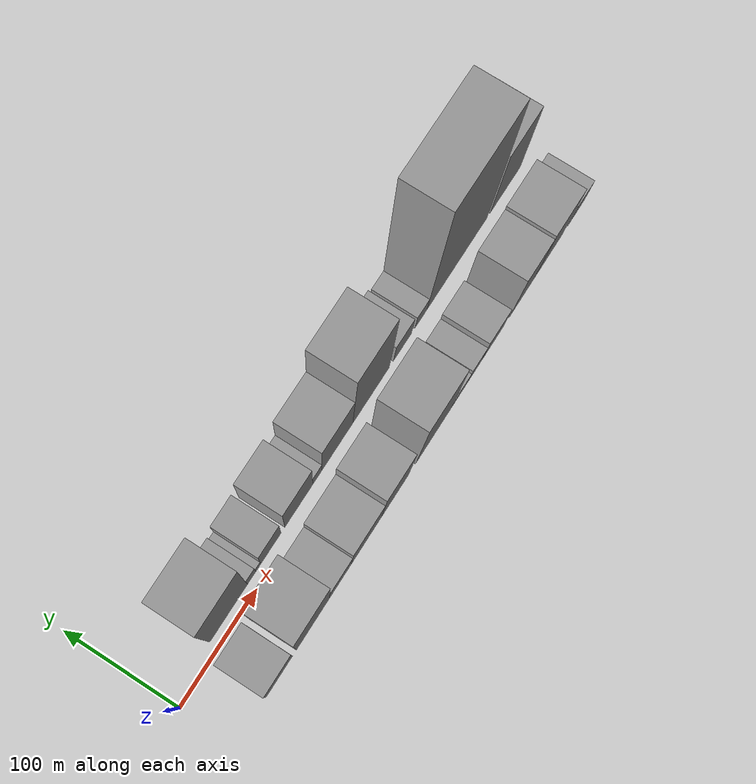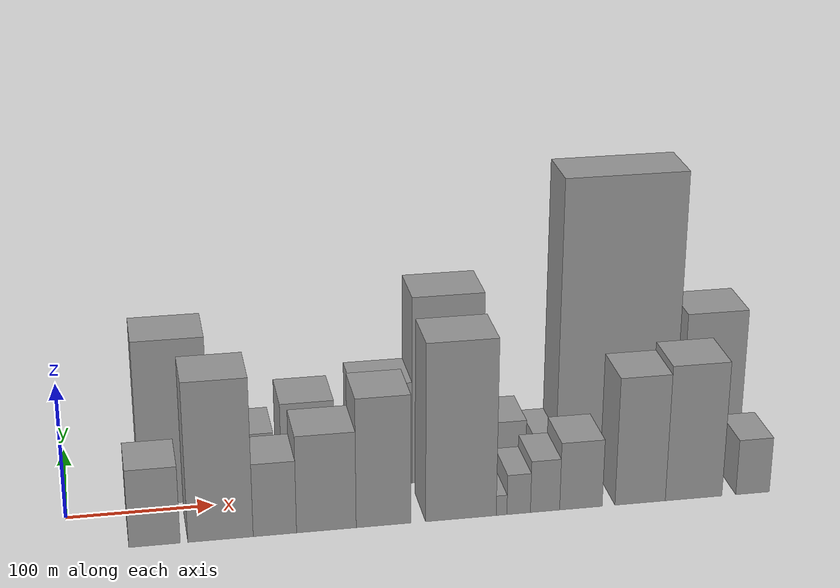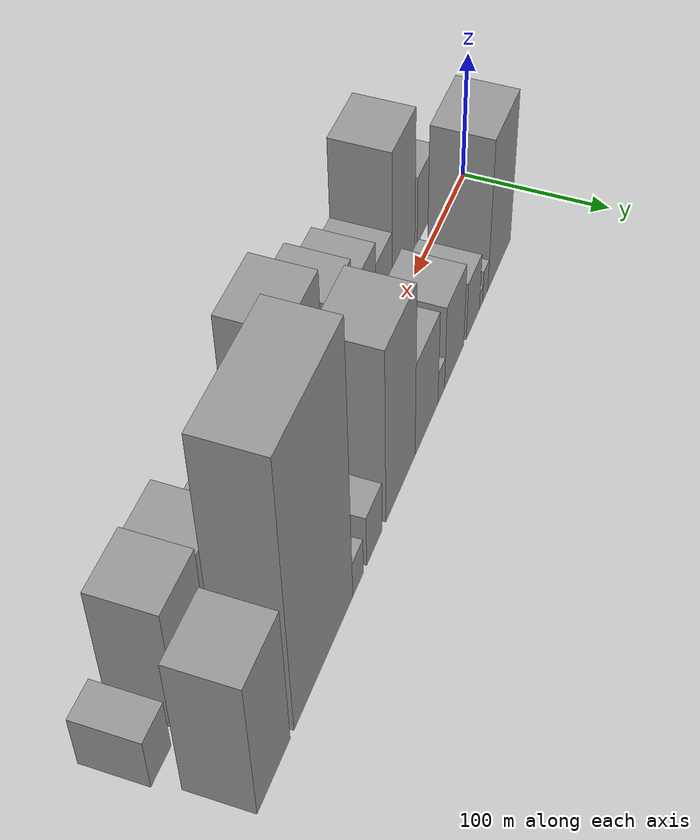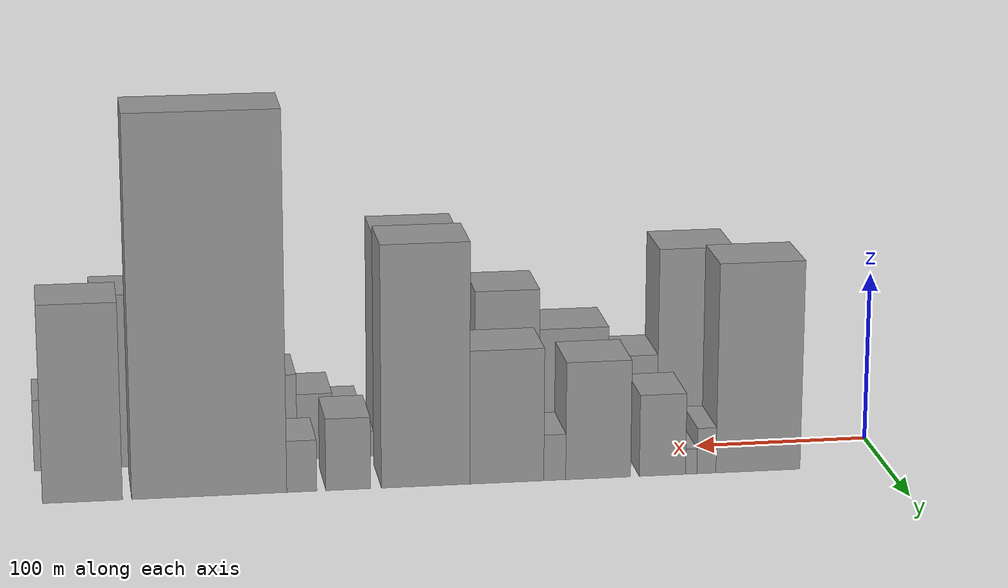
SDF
<sdf version="1.6">
 <world name="default">
  <scene>
   <sky><clouds><speed>12</speed></clouds></sky>
   <ambient>0.4 0.4 0.4 1</ambient>
   <background>0.7 0.7 0.7 1</background>
   <shadows>1</shadows>
  </scene>
  <gravity>0 0 -9.8066</gravity>
  <magnetic_field>6e-06 2.3e-05 -4.2e-05</magnetic_field>
  <physics default="0" name="default_physics" type="ode">
   <ode>
    <solver>
     <type>quick</type>
     <iters>10</iters>
     <sor>1.0</sor>
     <use_dynamic_moi_rescaling>0</use_dynamic_moi_rescaling>
    </solver>
    <constraints>
     <cfm>0</cfm>
     <erp>0.2</erp>
     <contact_max_correcting_vel>100</contact_max_correcting_vel>
     <contact_surface_layer>0.001</contact_surface_layer>
    </constraints>
   </ode>
   <max_step_size>0.004</max_step_size>
   <real_time_factor>1</real_time_factor>
   <real_time_update_rate>250</real_time_update_rate>
  </physics>
  <light name="sun" type="directional">
   <pose>0 0 10 0 0 0</pose>
   <diffuse>0.8 0.8 0.8 1</diffuse>
   <specular>0.2 0.2 0.2 1</specular>
   <attenuation>
    <range>1000</range>
    <constant>0.9</constant>
    <linear>0.01</linear>
    <quadratic>0.001</quadratic>
   </attenuation>
   <direction>-0.5 0.1 -0.9</direction>
  </light>
  <model name="building_1">
   <static>1</static>
   <pose>74.3449 27.5000 0 0.000000 0.000000 1.570796</pose>
   <link name="link">
    <pose>0 0 61.50 0 0 0</pose>
    <collision name="collision"><geometry><box><size>40.0000 48.6899 123.0000</size></box></geometry></collision>
    <visual name="visual">
     <cast_shadows>0</cast_shadows>
     <geometry><box><size>40.0000 48.6899 123.0000</size></box></geometry>
     <material>
      <script>
       <uri>model://grey_wall/materials/scripts</uri>
       <uri>model://grey_wall/materials/textures</uri>
       <name>vrc/grey_wall</name>
      </script>
     </material>
    </visual>
   </link>
  </model>
  <model name="building_2">
   <static>1</static>
   <pose>104.1551 27.5000 0 0.000000 0.000000 1.570796</pose>
   <link name="link">
    <pose>0 0 13.50 0 0 0</pose>
    <collision name="collision"><geometry><box><size>40.0000 10.9305 27.0000</size></box></geometry></collision>
    <visual name="visual">
     <cast_shadows>0</cast_shadows>
     <geometry><box><size>40.0000 10.9305 27.0000</size></box></geometry>
     <material>
      <script>
       <uri>model://grey_wall/materials/scripts</uri>
       <uri>model://grey_wall/materials/textures</uri>
       <name>vrc/grey_wall</name>
      </script>
     </material>
    </visual>
   </link>
  </model>
  <model name="building_3">
   <static>1</static>
   <pose>112.9041 27.5000 0 0.000000 0.000000 1.570796</pose>
   <link name="link">
    <pose>0 0 7.50 0 0 0</pose>
    <collision name="collision"><geometry><box><size>40.0000 6.5675 15.0000</size></box></geometry></collision>
    <visual name="visual">
     <cast_shadows>0</cast_shadows>
     <geometry><box><size>40.0000 6.5675 15.0000</size></box></geometry>
     <material>
      <script>
       <uri>model://grey_wall/materials/scripts</uri>
       <uri>model://grey_wall/materials/textures</uri>
       <name>vrc/grey_wall</name>
      </script>
     </material>
    </visual>
   </link>
  </model>
  <model name="building_4">
   <static>1</static>
   <pose>129.4727 27.5000 0 0.000000 0.000000 1.570796</pose>
   <link name="link">
    <pose>0 0 24.00 0 0 0</pose>
    <collision name="collision"><geometry><box><size>40.0000 26.5697 48.0000</size></box></geometry></collision>
    <visual name="visual">
     <cast_shadows>0</cast_shadows>
     <geometry><box><size>40.0000 26.5697 48.0000</size></box></geometry>
     <material>
      <script>
       <uri>model://grey_wall/materials/scripts</uri>
       <uri>model://grey_wall/materials/textures</uri>
       <name>vrc/grey_wall</name>
      </script>
     </material>
    </visual>
   </link>
  </model>
  <model name="building_5">
   <static>1</static>
   <pose>166.3005 27.5000 0 0.000000 0.000000 1.570796</pose>
   <link name="link">
    <pose>0 0 34.50 0 0 0</pose>
    <collision name="collision"><geometry><box><size>40.0000 37.0860 69.0000</size></box></geometry></collision>
    <visual name="visual">
     <cast_shadows>0</cast_shadows>
     <geometry><box><size>40.0000 37.0860 69.0000</size></box></geometry>
     <material>
      <script>
       <uri>model://grey_wall/materials/scripts</uri>
       <uri>model://grey_wall/materials/textures</uri>
       <name>vrc/grey_wall</name>
      </script>
     </material>
    </visual>
   </link>
  </model>
  <model name="building_6">
   <static>1</static>
   <pose>191.0851 27.5000 0 0.000000 0.000000 1.570796</pose>
   <link name="link">
    <pose>0 0 13.50 0 0 0</pose>
    <collision name="collision"><geometry><box><size>40.0000 12.4831 27.0000</size></box></geometry></collision>
    <visual name="visual">
     <cast_shadows>0</cast_shadows>
     <geometry><box><size>40.0000 12.4831 27.0000</size></box></geometry>
     <material>
      <script>
       <uri>model://grey_wall/materials/scripts</uri>
       <uri>model://grey_wall/materials/textures</uri>
       <name>vrc/grey_wall</name>
      </script>
     </material>
    </visual>
   </link>
  </model>
  <model name="building_7">
   <static>1</static>
   <pose>218.2409 27.5000 0 0.000000 0.000000 1.570796</pose>
   <link name="link">
    <pose>0 0 39.00 0 0 0</pose>
    <collision name="collision"><geometry><box><size>40.0000 41.8285 78.0000</size></box></geometry></collision>
    <visual name="visual">
     <cast_shadows>0</cast_shadows>
     <geometry><box><size>40.0000 41.8285 78.0000</size></box></geometry>
     <material>
      <script>
       <uri>model://grey_wall/materials/scripts</uri>
       <uri>model://grey_wall/materials/textures</uri>
       <name>vrc/grey_wall</name>
      </script>
     </material>
    </visual>
   </link>
  </model>
  <model name="building_8">
   <static>1</static>
   <pose>264.2187 27.5000 0 0.000000 0.000000 1.570796</pose>
   <link name="link">
    <pose>0 0 70.50 0 0 0</pose>
    <collision name="collision"><geometry><box><size>40.0000 50.1272 141.0000</size></box></geometry></collision>
    <visual name="visual">
     <cast_shadows>0</cast_shadows>
     <geometry><box><size>40.0000 50.1272 141.0000</size></box></geometry>
     <material>
      <script>
       <uri>model://grey_wall/materials/scripts</uri>
       <uri>model://grey_wall/materials/textures</uri>
       <name>vrc/grey_wall</name>
      </script>
     </material>
    </visual>
   </link>
  </model>
  <model name="building_9">
   <static>1</static>
   <pose>307.8596 27.5000 0 0.000000 0.000000 1.570796</pose>
   <link name="link">
    <pose>0 0 21.00 0 0 0</pose>
    <collision name="collision"><geometry><box><size>40.0000 25.1546 42.0000</size></box></geometry></collision>
    <visual name="visual">
     <cast_shadows>0</cast_shadows>
     <geometry><box><size>40.0000 25.1546 42.0000</size></box></geometry>
     <material>
      <script>
       <uri>model://grey_wall/materials/scripts</uri>
       <uri>model://grey_wall/materials/textures</uri>
       <name>vrc/grey_wall</name>
      </script>
     </material>
    </visual>
   </link>
  </model>
  <model name="building_10">
   <static>1</static>
   <pose>333.8535 27.5000 0 0.000000 0.000000 1.570796</pose>
   <link name="link">
    <pose>0 0 15.00 0 0 0</pose>
    <collision name="collision"><geometry><box><size>40.0000 16.8332 30.0000</size></box></geometry></collision>
    <visual name="visual">
     <cast_shadows>0</cast_shadows>
     <geometry><box><size>40.0000 16.8332 30.0000</size></box></geometry>
     <material>
      <script>
       <uri>model://grey_wall/materials/scripts</uri>
       <uri>model://grey_wall/materials/textures</uri>
       <name>vrc/grey_wall</name>
      </script>
     </material>
    </visual>
   </link>
  </model>
  <model name="building_11">
   <static>1</static>
   <pose>385.3249 27.5000 0 0.000000 0.000000 1.570796</pose>
   <link name="link">
    <pose>0 0 109.50 0 0 0</pose>
    <collision name="collision"><geometry><box><size>40.0000 86.1096 219.0000</size></box></geometry></collision>
    <visual name="visual">
     <cast_shadows>0</cast_shadows>
     <geometry><box><size>40.0000 86.1096 219.0000</size></box></geometry>
     <material>
      <script>
       <uri>model://grey_wall/materials/scripts</uri>
       <uri>model://grey_wall/materials/textures</uri>
       <name>vrc/grey_wall</name>
      </script>
     </material>
    </visual>
   </link>
  </model>
  <model name="building_12">
   <static>1</static>
   <pose>455.4078 27.5000 0 0.000000 0.000000 1.570796</pose>
   <link name="link">
    <pose>0 0 57.00 0 0 0</pose>
    <collision name="collision"><geometry><box><size>40.0000 44.0561 114.0000</size></box></geometry></collision>
    <visual name="visual">
     <cast_shadows>0</cast_shadows>
     <geometry><box><size>40.0000 44.0561 114.0000</size></box></geometry>
     <material>
      <script>
       <uri>model://grey_wall/materials/scripts</uri>
       <uri>model://grey_wall/materials/textures</uri>
       <name>vrc/grey_wall</name>
      </script>
     </material>
    </visual>
   </link>
  </model>
  <model name="building_13">
   <static>1</static>
   <pose>56.9012 -27.5000 0 0.000000 0.000000 1.570796</pose>
   <link name="link">
    <pose>0 0 28.50 0 0 0</pose>
    <collision name="collision"><geometry><box><size>40.0000 33.8023 57.0000</size></box></geometry></collision>
    <visual name="visual">
     <cast_shadows>0</cast_shadows>
     <geometry><box><size>40.0000 33.8023 57.0000</size></box></geometry>
     <material>
      <script>
       <uri>model://grey_wall/materials/scripts</uri>
       <uri>model://grey_wall/materials/textures</uri>
       <name>vrc/grey_wall</name>
      </script>
     </material>
    </visual>
   </link>
  </model>
  <model name="building_14">
   <static>1</static>
   <pose>100.4844 -27.5000 0 0.000000 0.000000 1.570796</pose>
   <link name="link">
    <pose>0 0 58.50 0 0 0</pose>
    <collision name="collision"><geometry><box><size>40.0000 43.3641 117.0000</size></box></geometry></collision>
    <visual name="visual">
     <cast_shadows>0</cast_shadows>
     <geometry><box><size>40.0000 43.3641 117.0000</size></box></geometry>
     <material>
      <script>
       <uri>model://grey_wall/materials/scripts</uri>
       <uri>model://grey_wall/materials/textures</uri>
       <name>vrc/grey_wall</name>
      </script>
     </material>
    </visual>
   </link>
  </model>
  <model name="building_15">
   <static>1</static>
   <pose>136.6754 -27.5000 0 0.000000 0.000000 1.570796</pose>
   <link name="link">
    <pose>0 0 27.00 0 0 0</pose>
    <collision name="collision"><geometry><box><size>40.0000 29.0179 54.0000</size></box></geometry></collision>
    <visual name="visual">
     <cast_shadows>0</cast_shadows>
     <geometry><box><size>40.0000 29.0179 54.0000</size></box></geometry>
     <material>
      <script>
       <uri>model://grey_wall/materials/scripts</uri>
       <uri>model://grey_wall/materials/textures</uri>
       <name>vrc/grey_wall</name>
      </script>
     </material>
    </visual>
   </link>
  </model>
  <model name="building_16">
   <static>1</static>
   <pose>171.3158 -27.5000 0 0.000000 0.000000 1.570796</pose>
   <link name="link">
    <pose>0 0 36.00 0 0 0</pose>
    <collision name="collision"><geometry><box><size>40.0000 40.2628 72.0000</size></box></geometry></collision>
    <visual name="visual">
     <cast_shadows>0</cast_shadows>
     <geometry><box><size>40.0000 40.2628 72.0000</size></box></geometry>
     <material>
      <script>
       <uri>model://grey_wall/materials/scripts</uri>
       <uri>model://grey_wall/materials/textures</uri>
       <name>vrc/grey_wall</name>
      </script>
     </material>
    </visual>
   </link>
  </model>
  <model name="building_17">
   <static>1</static>
   <pose>210.0917 -27.5000 0 0.000000 0.000000 1.570796</pose>
   <link name="link">
    <pose>0 0 48.00 0 0 0</pose>
    <collision name="collision"><geometry><box><size>40.0000 37.2889 96.0000</size></box></geometry></collision>
    <visual name="visual">
     <cast_shadows>0</cast_shadows>
     <geometry><box><size>40.0000 37.2889 96.0000</size></box></geometry>
     <material>
      <script>
       <uri>model://grey_wall/materials/scripts</uri>
       <uri>model://grey_wall/materials/textures</uri>
       <name>vrc/grey_wall</name>
      </script>
     </material>
    </visual>
   </link>
  </model>
  <model name="building_18">
   <static>1</static>
   <pose>263.1101 -27.5000 0 0.000000 0.000000 1.570796</pose>
   <link name="link">
    <pose>0 0 66.00 0 0 0</pose>
    <collision name="collision"><geometry><box><size>40.0000 48.7480 132.0000</size></box></geometry></collision>
    <visual name="visual">
     <cast_shadows>0</cast_shadows>
     <geometry><box><size>40.0000 48.7480 132.0000</size></box></geometry>
     <material>
      <script>
       <uri>model://grey_wall/materials/scripts</uri>
       <uri>model://grey_wall/materials/textures</uri>
       <name>vrc/grey_wall</name>
      </script>
     </material>
    </visual>
   </link>
  </model>
  <model name="building_19">
   <static>1</static>
   <pose>291.1990 -27.5000 0 0.000000 0.000000 1.570796</pose>
   <link name="link">
    <pose>0 0 7.50 0 0 0</pose>
    <collision name="collision"><geometry><box><size>40.0000 7.4296 15.0000</size></box></geometry></collision>
    <visual name="visual">
     <cast_shadows>0</cast_shadows>
     <geometry><box><size>40.0000 7.4296 15.0000</size></box></geometry>
     <material>
      <script>
       <uri>model://grey_wall/materials/scripts</uri>
       <uri>model://grey_wall/materials/textures</uri>
       <name>vrc/grey_wall</name>
      </script>
     </material>
    </visual>
   </link>
  </model>
  <model name="building_20">
   <static>1</static>
   <pose>303.1062 -27.5000 0 0.000000 0.000000 1.570796</pose>
   <link name="link">
    <pose>0 0 15.00 0 0 0</pose>
    <collision name="collision"><geometry><box><size>40.0000 16.3850 30.0000</size></box></geometry></collision>
    <visual name="visual">
     <cast_shadows>0</cast_shadows>
     <geometry><box><size>40.0000 16.3850 30.0000</size></box></geometry>
     <material>
      <script>
       <uri>model://grey_wall/materials/scripts</uri>
       <uri>model://grey_wall/materials/textures</uri>
       <name>vrc/grey_wall</name>
      </script>
     </material>
    </visual>
   </link>
  </model>
  <model name="building_21">
   <static>1</static>
   <pose>321.5206 -27.5000 0 0.000000 0.000000 1.570796</pose>
   <link name="link">
    <pose>0 0 19.50 0 0 0</pose>
    <collision name="collision"><geometry><box><size>40.0000 20.4437 39.0000</size></box></geometry></collision>
    <visual name="visual">
     <cast_shadows>0</cast_shadows>
     <geometry><box><size>40.0000 20.4437 39.0000</size></box></geometry>
     <material>
      <script>
       <uri>model://grey_wall/materials/scripts</uri>
       <uri>model://grey_wall/materials/textures</uri>
       <name>vrc/grey_wall</name>
      </script>
     </material>
    </visual>
   </link>
  </model>
  <model name="building_22">
   <static>1</static>
   <pose>346.7206 -27.5000 0 0.000000 0.000000 1.570796</pose>
   <link name="link">
    <pose>0 0 25.50 0 0 0</pose>
    <collision name="collision"><geometry><box><size>40.0000 29.9564 51.0000</size></box></geometry></collision>
    <visual name="visual">
     <cast_shadows>0</cast_shadows>
     <geometry><box><size>40.0000 29.9564 51.0000</size></box></geometry>
     <material>
      <script>
       <uri>model://grey_wall/materials/scripts</uri>
       <uri>model://grey_wall/materials/textures</uri>
       <name>vrc/grey_wall</name>
      </script>
     </material>
    </visual>
   </link>
  </model>
  <model name="building_23">
   <static>1</static>
   <pose>388.5741 -27.5000 0 0.000000 0.000000 1.570796</pose>
   <link name="link">
    <pose>0 0 48.00 0 0 0</pose>
    <collision name="collision"><geometry><box><size>40.0000 35.7507 96.0000</size></box></geometry></collision>
    <visual name="visual">
     <cast_shadows>0</cast_shadows>
     <geometry><box><size>40.0000 35.7507 96.0000</size></box></geometry>
     <material>
      <script>
       <uri>model://grey_wall/materials/scripts</uri>
       <uri>model://grey_wall/materials/textures</uri>
       <name>vrc/grey_wall</name>
      </script>
     </material>
    </visual>
   </link>
  </model>
  <model name="building_24">
   <static>1</static>
   <pose>426.7436 -27.5000 0 0.000000 0.000000 1.570796</pose>
   <link name="link">
    <pose>0 0 51.00 0 0 0</pose>
    <collision name="collision"><geometry><box><size>40.0000 40.5882 102.0000</size></box></geometry></collision>
    <visual name="visual">
     <cast_shadows>0</cast_shadows>
     <geometry><box><size>40.0000 40.5882 102.0000</size></box></geometry>
     <material>
      <script>
       <uri>model://grey_wall/materials/scripts</uri>
       <uri>model://grey_wall/materials/textures</uri>
       <name>vrc/grey_wall</name>
      </script>
     </material>
    </visual>
   </link>
  </model>
  <model name="building_25">
   <static>1</static>
   <pose>469.1745 -27.5000 0 0.000000 0.000000 1.570796</pose>
   <link name="link">
    <pose>0 0 21.00 0 0 0</pose>
    <collision name="collision"><geometry><box><size>40.0000 24.2735 42.0000</size></box></geometry></collision>
    <visual name="visual">
     <cast_shadows>0</cast_shadows>
     <geometry><box><size>40.0000 24.2735 42.0000</size></box></geometry>
     <material>
      <script>
       <uri>model://grey_wall/materials/scripts</uri>
       <uri>model://grey_wall/materials/textures</uri>
       <name>vrc/grey_wall</name>
      </script>
     </material>
    </visual>
   </link>
  </model>
 </world>
</sdf>
